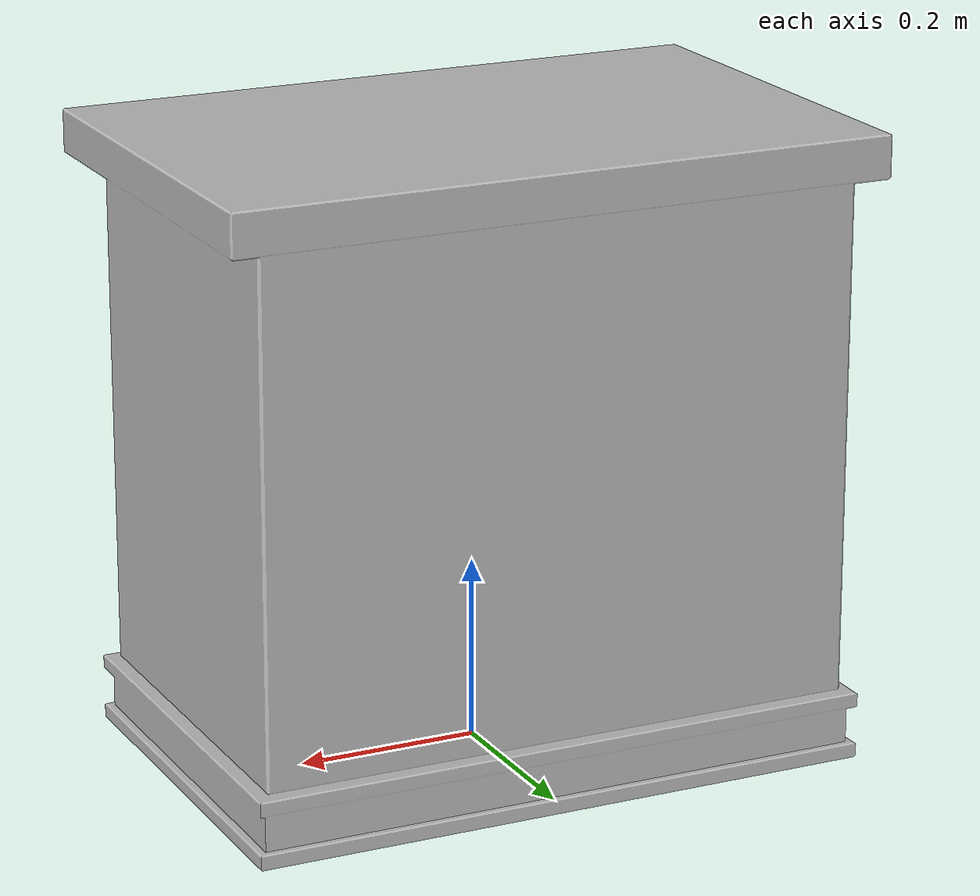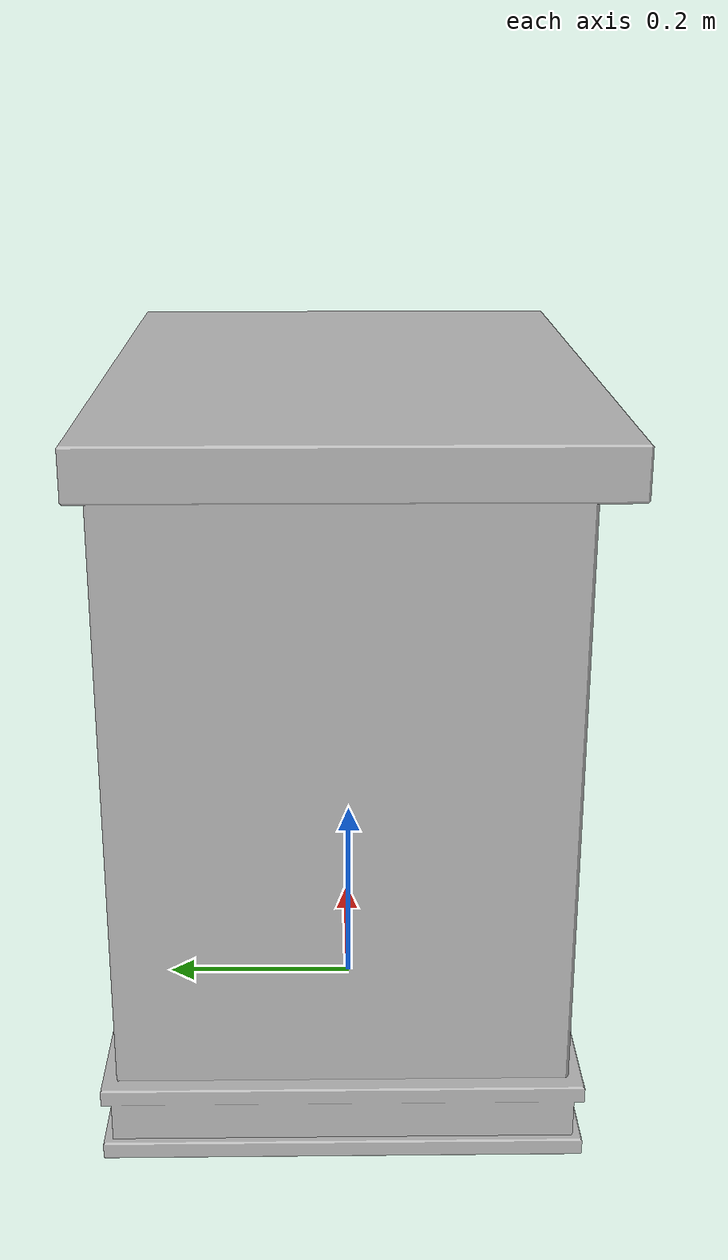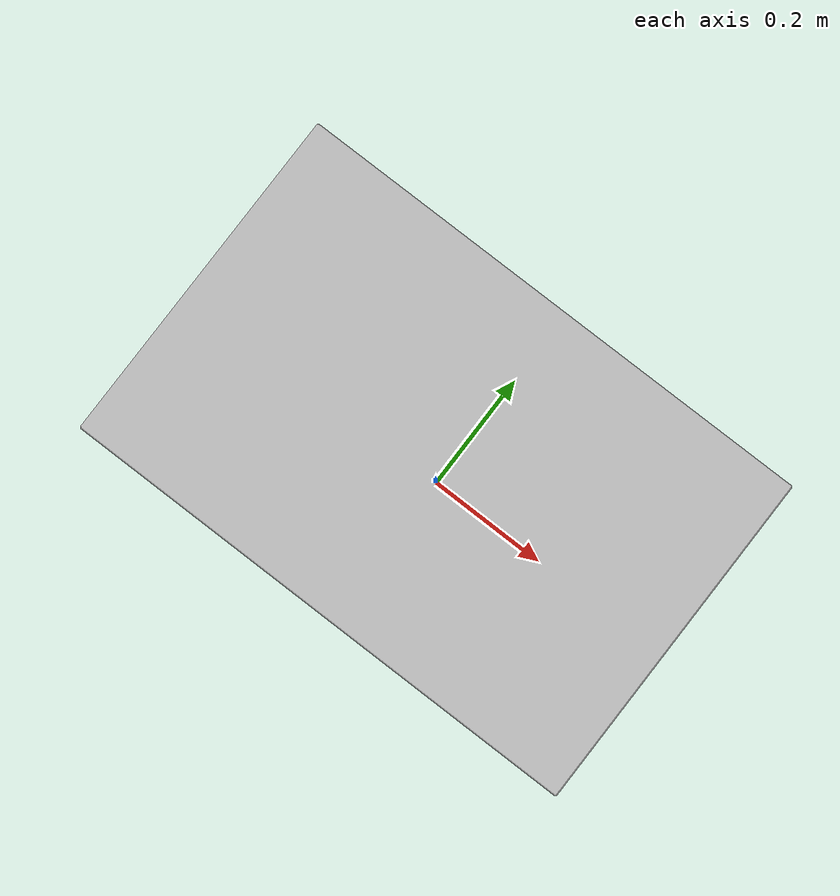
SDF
<?xml version="1.0"?>
<sdf version="1.6">
  <model name="aws_robomaker_residential_NightStand_01">
    <link name="link_NightStand_01">
      <inertial>
        <mass>13.6</mass>
        <inertia>
          <ixx>0.6165</ixx>
          <ixy>0</ixy>
          <ixz>0</ixz>
          <iyy>1.29664</iyy>
          <iyz>0</iyz>
          <izz>0.7706</izz>
        </inertia>
      </inertial>
      <collision name="collision">
        <geometry>
          <mesh>
            <uri>model://aws_robomaker_residential_NightStand_01/meshes/aws_NightStand_01_collision.DAE</uri>
            <scale>1 1 1</scale>
          </mesh>
        </geometry>
      </collision>
      <visual name="visual">
        <geometry>
          <mesh>
            <uri>model://aws_robomaker_residential_NightStand_01/meshes/aws_NightStand_01_visual.DAE</uri>
          </mesh>
        </geometry>
        <meta>
          <layer> 1 </layer>
        </meta>
      </visual>
    </link>
    <static>1</static>
  </model>
</sdf>
